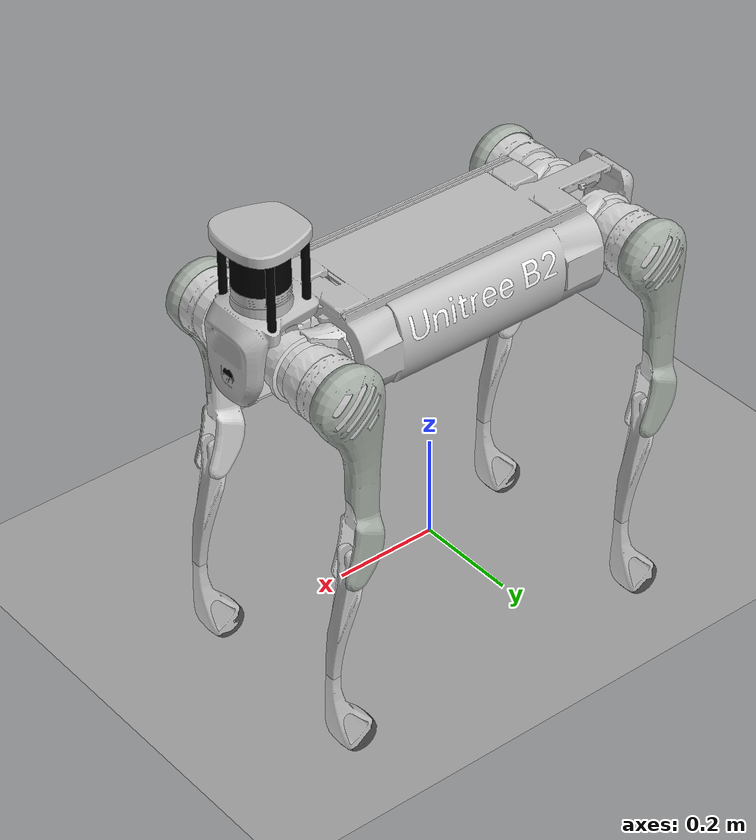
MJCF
<mujoco model="b2_description">
  <compiler angle="radian" autolimits="true" inertiafromgeom="false" meshdir="assets/b2"/>
  <option timestep="0.001" gravity="0 0 -9.81" integrator="implicitfast"/>

  <default>
    <joint damping="0.5" armature="0.01" frictionloss="0.05"/>
    <geom friction="1.2 0.005 0.0001" condim="3" contype="1" conaffinity="0"/>
    <position ctrllimited="true" forcelimited="true"/>
    <default class="collision">
      <geom group="3"/>
    </default>
    <default class="visual">
      <geom type="mesh" group="1" contype="0" conaffinity="0" mass="0"/>
    </default>
  </default>

  <asset>
    <mesh name="B2_base_link_0" file="B2_base_link_0.obj"/>
    <mesh name="B2_base_link_1" file="B2_base_link_1.obj"/>
    <mesh name="B2_base_link_2" file="B2_base_link_2.obj"/>
    <mesh name="B2_base_link_3" file="B2_base_link_3.obj"/>
    <mesh name="B2_FL_hip_0" file="B2_FL_hip_0.obj"/>
    <mesh name="B2_FL_thigh_0" file="B2_FL_thigh_0.obj"/>
    <mesh name="B2_FL_thigh_1" file="B2_FL_thigh_1.obj"/>
    <mesh name="B2_calf_0" file="B2_calf_0.obj"/>
    <mesh name="B2_calf_1" file="B2_calf_1.obj"/>
    <mesh name="B2_FR_hip_0" file="B2_FR_hip_0.obj"/>
    <mesh name="B2_FR_thigh_0" file="B2_FR_thigh_0.obj"/>
    <mesh name="B2_FR_thigh_1" file="B2_FR_thigh_1.obj"/>
    <mesh name="B2_RL_hip_0" file="B2_RL_hip_0.obj"/>
    <mesh name="B2_RL_thigh_0" file="B2_RL_thigh_0.obj"/>
    <mesh name="B2_RL_thigh_1" file="B2_RL_thigh_1.obj"/>
    <mesh name="B2_RR_hip_0" file="B2_RR_hip_0.obj"/>
    <mesh name="B2_RR_thigh_0" file="B2_RR_thigh_0.obj"/>
    <mesh name="B2_RR_thigh_1" file="B2_RR_thigh_1.obj"/>
  </asset>

  <worldbody>
    <geom name="floor" type="plane" size="10 10 0.1" contype="1" conaffinity="1" rgba="0.8 0.8 0.8 1"/>
    <light pos="0 0 2" dir="0 0 -1"/>

    <!-- Spawn above standing contact: nominal 0.5 + foot bottom 0.032 + clearance 0.02. -->
    <body name="base_link" pos="0 0 0.552">
      <freejoint name="root"/>
      <inertial pos="0.000458 0.005261 0.000665" mass="35.86" fullinertia="0.27466 1.0618 1.1825 -0.000622 0.00315 -0.00139"/>
      <geom name="base_link_collision" class="collision" type="box" size="0.25 0.14 0.075" rgba="0.2 0.3 0.6 1"/>
      <geom name="base_link_visual_0" class="visual" mesh="B2_base_link_0" rgba="0.74876 0.74876 0.74876 1"/>
      <geom name="base_link_visual_1" class="visual" mesh="B2_base_link_1" rgba="1 1 1 1"/>
      <geom name="base_link_visual_2" class="visual" mesh="B2_base_link_2" rgba="0 0 0 1"/>
      <geom name="base_link_visual_3" class="visual" mesh="B2_base_link_3" rgba="0.002853 0.002853 0.002853 1"/>
      <body name="lidar_link" pos="0.34218 0 0.17851">
        <!-- lidar_link: massless in URDF -->
        <geom name="lidar_link_collision" class="collision" type="cylinder" size="0.076 0.08" pos="0 0 -0.02" rgba="0.5 0.5 0.5 1"/>
      </body>
      <body name="f_dc_link" pos="0.41251 0.024997 0.04765" quat="0.270595753366195 -0.6532810280864045 0.653283427726018 -0.27059674732172273">
        <!-- f_dc_link: massless in URDF -->
      </body>
      <body name="r_dc_link" pos="-0.4081 -0.025 0.024861" quat="0.27075906516539805 -0.6532133587337356 -0.6532157581247853 0.2707600597208046">
        <!-- r_dc_link: massless in URDF -->
      </body>
      <body name="imu_link" pos="0 -0.02341 0.04927">
        <!-- imu_link: massless in URDF -->
      </body>
      <body name="head_Link">
        <inertial pos="0.33989 -0.000168 0.12029" mass="3.6885" fullinertia="0.026455 0.029221 0.010918 3.15E-05 0.00166 -3.27E-05"/>
        <geom name="head_Link_collision" class="collision" type="box" size="0.02 0.06 0.07" pos="0.41 0 0.005" rgba="0.5 0.5 0.5 1"/>
      </body>
      <body name="tail_link">
        <inertial pos="-0.37448 0.000488 0.006495" mass="0.795" fullinertia="0.0028118 0.0047506 0.0029154 1.95E-05 -7.87E-06 -1.57E-05"/>
        <geom name="tail_link_collision" class="collision" type="box" size="0.0125 0.06 0.07" pos="-0.405 0 0.005" rgba="0.5 0.5 0.5 1"/>
      </body>
      <body name="FL_hip" pos="0.3285 0.072 0">
        <joint name="FL_hip_joint" type="hinge" axis="1 0 0" range="-0.87 0.87"/>
        <inertial pos="-0.003841 -0.009068 0" mass="2.673" fullinertia="0.0033188 0.0048743 0.0037087 7.16E-05 -3.77E-07 4E-09"/>
        <geom name="FL_hip_collision" class="collision" type="cylinder" size="0.07 0.025" pos="0 0.12 0" quat="0.7071067811865476 0.7071067811865475 0.0 0.0" rgba="0.35 0.35 0.35 1"/>
        <geom name="FL_hip_visual" class="visual" mesh="B2_FL_hip_0" rgba="0.85 0.85 0.85 1"/>
        <body name="FL_thigh" pos="0 0.11973 0">
          <joint name="FL_thigh_joint" type="hinge" axis="0 1 0" range="-0.94 4.69"/>
          <inertial pos="-0.006279 -0.032049 -0.057835" mass="4.536" fullinertia="0.062299 0.061399 0.0081997 0.00087781 -0.0036475 0.0083537"/>
          <geom name="FL_thigh_collision" class="collision" type="box" size="0.125 0.014 0.02" pos="-0.03 0 -0.2" quat="0.7073882691671998 0.0 0.706825181105366 0.0" rgba="0.35 0.35 0.35 1"/>
          <geom name="FL_thigh_visual_0" class="visual" mesh="B2_FL_thigh_0" rgba="0.85 0.85 0.85 1"/>
          <geom name="FL_thigh_visual_1" class="visual" mesh="B2_FL_thigh_1" rgba="0.6500053 0.68 0.6500053 1"/>
          <body name="FL_calf" pos="0 -8.6984E-05 -0.35">
            <joint name="FL_calf_joint" type="hinge" axis="0 1 0" range="-2.82 -0.43"/>
            <inertial pos="0.012422 0 -0.12499" mass="0.404" fullinertia="0.01143 0.011534 0.000331 0 0.000643 0"/>
            <geom name="FL_calf_collision" class="collision" type="box" size="0.05 0.01225 0.009" pos="-0.002 0 -0.03" quat="0.8253356149096783 0.0 0.5646424733950354 0.0" rgba="0.35 0.35 0.35 1"/>
            <geom name="FL_calf_collision_1" class="collision" type="box" size="0.05 0.01225 0.009" pos="0.022 0 -0.1" quat="0.7807069511324468 0.0 0.6248973167276999 0.0" rgba="0.35 0.35 0.35 1"/>
            <geom name="FL_calf_collision_2" class="collision" type="box" size="0.075 0.01225 0.0075" pos="0.036 0 -0.225" quat="0.7213823574366063 0.0 0.6925369985634013 0.0" rgba="0.35 0.35 0.35 1"/>
            <geom name="FL_calf_collision_3" class="collision" type="box" size="0.025 0.014 0.0175" pos="0.023 0 -0.31" quat="0.5403023058681398 0.0 0.8414709848078965 0.0" rgba="0.35 0.35 0.35 1"/>
            <geom name="FL_calf_visual_0" class="visual" mesh="B2_calf_0" rgba="0.74876 0.74876 0.74876 1"/>
            <geom name="FL_calf_visual_1" class="visual" mesh="B2_calf_1" rgba="0.07323546 0.07323546 0.07323546 1"/>
            <body name="FL_foot" pos="0 0 -0.35">
              <inertial pos="-0.006511 0 -0.010144" mass="0.126" fullinertia="3.8E-05 4.1E-05 4.2E-05 0 1.1E-05 0"/>
              <geom name="FL_foot_collision" class="collision" type="sphere" size="0.032" quat="0.7073882691671998 0.706825181105366 0.0 0.0" rgba="0.9 0.4 0.2 1"/>
              <site name="FL_foot_site" pos="0 0 0" size="0.006"/>
            </body>
          </body>
          <body name="FL_calf_rotor" pos="0 -0.05788 0">
            <inertial pos="0.0 0.0 0.0" mass="0.2734" fullinertia="0.000144463 0.000144463 0.000263053 0.0 0.0 0.0"/>
            <geom name="FL_calf_rotor_collision" class="collision" type="cylinder" size="0.05 0.01" quat="0.7071067811865476 0.7071067811865475 0.0 0.0" rgba="0.5 0.5 0.5 1"/>
          </body>
        </body>
        <body name="FL_thigh_rotor" pos="0 -0.00798 0">
          <inertial pos="0.0 0.0 0.0" mass="0.2734" fullinertia="0.000144463 0.000144463 0.000263053 0.0 0.0 0.0"/>
          <geom name="FL_thigh_rotor_collision" class="collision" type="cylinder" size="0.05 0.01" quat="0.7071067811865476 0.7071067811865475 0.0 0.0" rgba="0.5 0.5 0.5 1"/>
        </body>
      </body>
      <body name="FL_hip_rotor" pos="0.20205 0.072 0">
        <inertial pos="0.0 0.0 0.0" mass="0.2734" fullinertia="0.000144463 0.000144463 0.000263053 0.0 0.0 0.0"/>
        <geom name="FL_hip_rotor_collision" class="collision" type="cylinder" size="0.05 0.01" quat="0.7071067811865476 0.0 0.7071067811865475 0.0" rgba="0.5 0.5 0.5 1"/>
      </body>
      <body name="FR_hip" pos="0.3285 -0.072 0">
        <joint name="FR_hip_joint" type="hinge" axis="1 0 0" range="-0.87 0.87"/>
        <inertial pos="-0.009305 0.010228 0.000264" mass="2.673" fullinertia="0.0026431 0.0046728 0.0034208 -0.00019234 -6.76E-06 7.16E-06"/>
        <geom name="FR_hip_collision" class="collision" type="cylinder" size="0.07 0.025" pos="0 -0.12 0" quat="0.7071067811865476 0.7071067811865475 0.0 0.0" rgba="0.35 0.35 0.35 1"/>
        <geom name="FR_hip_visual" class="visual" mesh="B2_FR_hip_0" rgba="0.85 0.85 0.85 1"/>
        <body name="FR_thigh" pos="0 -0.11973 0">
          <joint name="FR_thigh_joint" type="hinge" axis="0 1 0" range="-0.94 4.69"/>
          <inertial pos="-0.006279 0.032049 -0.057835" mass="4.536" fullinertia="0.06229908 0.06139927 0.008199745 -0.000877808 -0.003647464 -0.008353671"/>
          <geom name="FR_thigh_collision" class="collision" type="box" size="0.125 0.014 0.02" pos="-0.03 0 -0.2" quat="0.7073882691671998 0.0 0.706825181105366 0.0" rgba="0.35 0.35 0.35 1"/>
          <geom name="FR_thigh_visual_0" class="visual" mesh="B2_FR_thigh_0" rgba="0.85 0.85 0.85 1"/>
          <geom name="FR_thigh_visual_1" class="visual" mesh="B2_FR_thigh_1" rgba="0.6500053 0.68 0.6500053 1"/>
          <body name="FR_calf" pos="0 8.6986E-05 -0.35">
            <joint name="FR_calf_joint" type="hinge" axis="0 1 0" range="-2.82 -0.43"/>
            <inertial pos="0.012422 0 -0.12499" mass="0.404" fullinertia="0.01143 0.011534 0.000331 0 0.000643 0"/>
            <geom name="FR_calf_collision" class="collision" type="box" size="0.05 0.01225 0.009" pos="-0.002 0 -0.03" quat="0.8253356149096783 0.0 0.5646424733950354 0.0" rgba="0.35 0.35 0.35 1"/>
            <geom name="FR_calf_collision_1" class="collision" type="box" size="0.05 0.01225 0.009" pos="0.022 0 -0.1" quat="0.7807069511324468 0.0 0.6248973167276999 0.0" rgba="0.35 0.35 0.35 1"/>
            <geom name="FR_calf_collision_2" class="collision" type="box" size="0.075 0.01225 0.0075" pos="0.036 0 -0.225" quat="0.7213823574366063 0.0 0.6925369985634013 0.0" rgba="0.35 0.35 0.35 1"/>
            <geom name="FR_calf_collision_3" class="collision" type="box" size="0.025 0.014 0.0175" pos="0.023 0 -0.31" quat="0.5403023058681398 0.0 0.8414709848078965 0.0" rgba="0.35 0.35 0.35 1"/>
            <geom name="FR_calf_visual_0" class="visual" mesh="B2_calf_0" rgba="0.74876 0.74876 0.74876 1"/>
            <geom name="FR_calf_visual_1" class="visual" mesh="B2_calf_1" rgba="0.07323546 0.07323546 0.07323546 1"/>
            <body name="FR_foot" pos="0 0 -0.35">
              <inertial pos="-0.006511 0 -0.010144" mass="0.126" fullinertia="3.8E-05 4.1E-05 4.2E-05 0 1.1E-05 0"/>
              <geom name="FR_foot_collision" class="collision" type="sphere" size="0.032" quat="0.7073882691671998 0.706825181105366 0.0 0.0" rgba="0.9 0.4 0.2 1"/>
              <site name="FR_foot_site" pos="0 0 0" size="0.006"/>
            </body>
          </body>
          <body name="FR_calf_rotor" pos="0 0.05788 0">
            <inertial pos="0.0 0.0 0.0" mass="0.2734" fullinertia="0.000144463 0.000144463 0.000263053 0.0 0.0 0.0"/>
            <geom name="FR_calf_rotor_collision" class="collision" type="cylinder" size="0.05 0.01" quat="0.7071067811865476 0.7071067811865475 0.0 0.0" rgba="0.5 0.5 0.5 1"/>
          </body>
        </body>
        <body name="FR_thigh_rotor" pos="0 0.00798 0">
          <inertial pos="0.0 0.0 0.0" mass="0.2734" fullinertia="0.000144463 0.000144463 0.000263053 0.0 0.0 0.0"/>
          <geom name="FR_thigh_rotor_collision" class="collision" type="cylinder" size="0.05 0.01" quat="0.7071067811865476 0.7071067811865475 0.0 0.0" rgba="0.5 0.5 0.5 1"/>
        </body>
      </body>
      <body name="FR_hip_rotor" pos="0.20205 -0.072 0">
        <inertial pos="0.0 0.0 0.0" mass="0.2734" fullinertia="0.000144463 0.000144463 0.000263053 0.0 0.0 0.0"/>
        <geom name="FR_hip_rotor_collision" class="collision" type="cylinder" size="0.05 0.01" quat="0.7071067811865476 0.0 0.7071067811865475 0.0" rgba="0.5 0.5 0.5 1"/>
      </body>
      <body name="RL_hip" pos="-0.3285 0.072 0">
        <joint name="RL_hip_joint" type="hinge" axis="1 0 0" range="-0.87 0.87"/>
        <inertial pos="0.009305 -0.010228 0.000264" mass="2.673" fullinertia="0.0026431 0.0046728 0.0034208 -0.00019234 6.76E-06 -7.16E-06"/>
        <geom name="RL_hip_collision" class="collision" type="cylinder" size="0.07 0.025" pos="0 0.12 0" quat="0.7071067811865476 0.7071067811865475 0.0 0.0" rgba="0.35 0.35 0.35 1"/>
        <geom name="RL_hip_visual" class="visual" mesh="B2_RL_hip_0" rgba="0.85 0.85 0.85 1"/>
        <body name="RL_thigh" pos="0 0.11973 0">
          <joint name="RL_thigh_joint" type="hinge" axis="0 1 0" range="-0.94 4.69"/>
          <inertial pos="-0.006279 -0.032049 -0.057835" mass="4.536" fullinertia="0.06229908 0.06139927 0.008199745 0.000877808 -0.003647464 0.008353671"/>
          <geom name="RL_thigh_collision" class="collision" type="box" size="0.125 0.014 0.02" pos="-0.03 0 -0.2" quat="0.7073882691671998 0.0 0.706825181105366 0.0" rgba="0.35 0.35 0.35 1"/>
          <geom name="RL_thigh_visual_0" class="visual" mesh="B2_RL_thigh_0" rgba="0.85 0.85 0.85 1"/>
          <geom name="RL_thigh_visual_1" class="visual" mesh="B2_RL_thigh_1" rgba="0.6500053 0.68 0.6500053 1"/>
          <body name="RL_calf" pos="0 -8.6984E-05 -0.35">
            <joint name="RL_calf_joint" type="hinge" axis="0 1 0" range="-2.82 -0.43"/>
            <inertial pos="0.012422 0 -0.12499" mass="0.404" fullinertia="0.01143 0.011534 0.000331 0 0.000643 0"/>
            <geom name="RL_calf_collision" class="collision" type="box" size="0.05 0.01225 0.009" pos="-0.002 0 -0.03" quat="0.8253356149096783 0.0 0.5646424733950354 0.0" rgba="0.35 0.35 0.35 1"/>
            <geom name="RL_calf_collision_1" class="collision" type="box" size="0.05 0.01225 0.009" pos="0.022 0 -0.1" quat="0.7807069511324468 0.0 0.6248973167276999 0.0" rgba="0.35 0.35 0.35 1"/>
            <geom name="RL_calf_collision_2" class="collision" type="box" size="0.075 0.01225 0.0075" pos="0.036 0 -0.225" quat="0.7213823574366063 0.0 0.6925369985634013 0.0" rgba="0.35 0.35 0.35 1"/>
            <geom name="RL_calf_collision_3" class="collision" type="box" size="0.025 0.014 0.0175" pos="0.023 0 -0.31" quat="0.5403023058681398 0.0 0.8414709848078965 0.0" rgba="0.35 0.35 0.35 1"/>
            <geom name="RL_calf_visual_0" class="visual" mesh="B2_calf_0" rgba="0.74876 0.74876 0.74876 1"/>
            <geom name="RL_calf_visual_1" class="visual" mesh="B2_calf_1" rgba="0.07323546 0.07323546 0.07323546 1"/>
            <body name="RL_foot" pos="0 0 -0.35">
              <inertial pos="-0.006511 0 -0.010144" mass="0.126" fullinertia="3.8E-05 4.1E-05 4.2E-05 0 1.1E-05 0"/>
              <geom name="RL_foot_collision" class="collision" type="sphere" size="0.032" quat="0.7073882691671998 0.706825181105366 0.0 0.0" rgba="0.9 0.4 0.2 1"/>
              <site name="RL_foot_site" pos="0 0 0" size="0.006"/>
            </body>
          </body>
          <body name="RL_calf_rotor" pos="0 -0.05788 0">
            <inertial pos="0.0 0.0 0.0" mass="0.2734" fullinertia="0.000144463 0.000144463 0.000263053 0.0 0.0 0.0"/>
            <geom name="RL_calf_rotor_collision" class="collision" type="cylinder" size="0.05 0.01" quat="0.7071067811865476 0.7071067811865475 0.0 0.0" rgba="0.5 0.5 0.5 1"/>
          </body>
        </body>
        <body name="RL_thigh_rotor" pos="0 -0.00798 0">
          <inertial pos="0.0 0.0 0.0" mass="0.2734" fullinertia="0.000144463 0.000144463 0.000263053 0.0 0.0 0.0"/>
          <geom name="RL_thigh_rotor_collision" class="collision" type="cylinder" size="0.05 0.01" quat="0.7071067811865476 0.7071067811865475 0.0 0.0" rgba="0.5 0.5 0.5 1"/>
        </body>
      </body>
      <body name="RL_hip_rotor" pos="-0.20205 0.072 0">
        <inertial pos="0.0 0.0 0.0" mass="0.2734" fullinertia="0.000144463 0.000144463 0.000263053 0.0 0.0 0.0"/>
        <geom name="RL_hip_rotor_collision" class="collision" type="cylinder" size="0.05 0.01" quat="0.7071067811865476 0.0 0.7071067811865475 0.0" rgba="0.5 0.5 0.5 1"/>
      </body>
      <body name="RR_hip" pos="-0.3285 -0.072 0">
        <joint name="RR_hip_joint" type="hinge" axis="1 0 0" range="-0.87 0.87"/>
        <inertial pos="0.003841 0.009068 0" mass="2.673" fullinertia="0.0033188 0.0048743 0.0037087 7.16E-05 3.77E-07 -4E-09"/>
        <geom name="RR_hip_collision" class="collision" type="cylinder" size="0.07 0.025" pos="0 -0.12 0" quat="0.7071067811865476 0.7071067811865475 0.0 0.0" rgba="0.35 0.35 0.35 1"/>
        <geom name="RR_hip_visual" class="visual" mesh="B2_RR_hip_0" rgba="0.85 0.85 0.85 1"/>
        <body name="RR_thigh" pos="0 -0.11973 0">
          <joint name="RR_thigh_joint" type="hinge" axis="0 1 0" range="-0.94 4.69"/>
          <inertial pos="-0.006279 0.032049 -0.057835" mass="4.536" fullinertia="0.062299 0.061399 0.0081997 -0.00087781 -0.0036475 -0.0083537"/>
          <geom name="RR_thigh_collision" class="collision" type="box" size="0.125 0.014 0.02" pos="-0.03 0 -0.2" quat="0.7073882691671998 0.0 0.706825181105366 0.0" rgba="0.35 0.35 0.35 1"/>
          <geom name="RR_thigh_visual_0" class="visual" mesh="B2_RR_thigh_0" rgba="0.85 0.85 0.85 1"/>
          <geom name="RR_thigh_visual_1" class="visual" mesh="B2_RR_thigh_1" rgba="0.6500053 0.68 0.6500053 1"/>
          <body name="RR_calf" pos="0 8.6986E-05 -0.35">
            <joint name="RR_calf_joint" type="hinge" axis="0 1 0" range="-2.82 -0.43"/>
            <inertial pos="0.012422 0 -0.12499" mass="0.404" fullinertia="0.01143 0.011534 0.000331 0 0.000643 0"/>
            <geom name="RR_calf_collision" class="collision" type="box" size="0.05 0.01225 0.009" pos="-0.002 0 -0.03" quat="0.8253356149096783 0.0 0.5646424733950354 0.0" rgba="0.35 0.35 0.35 1"/>
            <geom name="RR_calf_collision_1" class="collision" type="box" size="0.05 0.01225 0.009" pos="0.022 0 -0.1" quat="0.7807069511324468 0.0 0.6248973167276999 0.0" rgba="0.35 0.35 0.35 1"/>
            <geom name="RR_calf_collision_2" class="collision" type="box" size="0.075 0.01225 0.0075" pos="0.036 0 -0.225" quat="0.7213823574366063 0.0 0.6925369985634013 0.0" rgba="0.35 0.35 0.35 1"/>
            <geom name="RR_calf_collision_3" class="collision" type="box" size="0.025 0.014 0.0175" pos="0.023 0 -0.31" quat="0.5403023058681398 0.0 0.8414709848078965 0.0" rgba="0.35 0.35 0.35 1"/>
            <geom name="RR_calf_visual_0" class="visual" mesh="B2_calf_0" rgba="0.74876 0.74876 0.74876 1"/>
            <geom name="RR_calf_visual_1" class="visual" mesh="B2_calf_1" rgba="0.07323546 0.07323546 0.07323546 1"/>
            <body name="RR_foot" pos="0 -8.6984E-05 -0.35">
              <inertial pos="-0.006511 0 -0.010144" mass="0.126" fullinertia="3.8E-05 4.1E-05 4.2E-05 0 1.1E-05 0"/>
              <geom name="RR_foot_collision" class="collision" type="sphere" size="0.032" quat="0.7073882691671998 0.706825181105366 0.0 0.0" rgba="0.9 0.4 0.2 1"/>
              <site name="RR_foot_site" pos="0 0 0" size="0.006"/>
            </body>
          </body>
          <body name="RR_calf_rotor" pos="0 0.05788 0">
            <inertial pos="0.0 0.0 0.0" mass="0.2734" fullinertia="0.000144463 0.000144463 0.000263053 0.0 0.0 0.0"/>
            <geom name="RR_calf_rotor_collision" class="collision" type="cylinder" size="0.05 0.01" quat="0.7071067811865476 0.7071067811865475 0.0 0.0" rgba="0.5 0.5 0.5 1"/>
          </body>
        </body>
        <body name="RR_thigh_rotor" pos="0 0.00798 0">
          <inertial pos="0.0 0.0 0.0" mass="0.2734" fullinertia="0.000144463 0.000144463 0.000263053 0.0 0.0 0.0"/>
          <geom name="RR_thigh_rotor_collision" class="collision" type="cylinder" size="0.05 0.01" quat="0.7071067811865476 0.7071067811865475 0.0 0.0" rgba="0.5 0.5 0.5 1"/>
        </body>
      </body>
      <body name="RR_hip_rotor" pos="-0.20205 -0.072 0">
        <inertial pos="0.0 0.0 0.0" mass="0.2734" fullinertia="0.000144463 0.000144463 0.000263053 0.0 0.0 0.0"/>
        <geom name="RR_hip_rotor_collision" class="collision" type="cylinder" size="0.05 0.01" quat="0.7071067811865476 0.0 0.7071067811865475 0.0" rgba="0.5 0.5 0.5 1"/>
      </body>
      <body name="f_oc_link" pos="0.39079 0 -0.013433" quat="0.4999981633974483 -0.49999999999662686 0.5000018366025516 -0.49999999999662686">
        <!-- f_oc_link: massless in URDF -->
      </body>
      <body name="r_oc_link" pos="-0.38451 0 -0.023249" quat="0.4999981633974483 -0.49999999999662686 -0.5000018366025516 0.49999999999662686">
        <!-- r_oc_link: massless in URDF -->
      </body>
    </body>
  </worldbody>

  <actuator>
    <position name="FL_hip_joint" joint="FL_hip_joint" kp="500.0" kv="20.0" ctrlrange="-0.87 0.87" forcerange="-200 200"/>
    <position name="FL_thigh_joint" joint="FL_thigh_joint" kp="1000.0" kv="20.0" ctrlrange="-0.94 4.69" forcerange="-200 200"/>
    <position name="FL_calf_joint" joint="FL_calf_joint" kp="1000.0" kv="20.0" ctrlrange="-2.82 -0.43" forcerange="-320 320"/>
    <position name="FR_hip_joint" joint="FR_hip_joint" kp="500.0" kv="20.0" ctrlrange="-0.87 0.87" forcerange="-200 200"/>
    <position name="FR_thigh_joint" joint="FR_thigh_joint" kp="1000.0" kv="20.0" ctrlrange="-0.94 4.69" forcerange="-200 200"/>
    <position name="FR_calf_joint" joint="FR_calf_joint" kp="1000.0" kv="20.0" ctrlrange="-2.82 -0.43" forcerange="-320 320"/>
    <position name="RL_hip_joint" joint="RL_hip_joint" kp="500.0" kv="20.0" ctrlrange="-0.87 0.87" forcerange="-200 200"/>
    <position name="RL_thigh_joint" joint="RL_thigh_joint" kp="1000.0" kv="20.0" ctrlrange="-0.94 4.69" forcerange="-200 200"/>
    <position name="RL_calf_joint" joint="RL_calf_joint" kp="1000.0" kv="20.0" ctrlrange="-2.82 -0.43" forcerange="-320 320"/>
    <position name="RR_hip_joint" joint="RR_hip_joint" kp="500.0" kv="20.0" ctrlrange="-0.87 0.87" forcerange="-200 200"/>
    <position name="RR_thigh_joint" joint="RR_thigh_joint" kp="1000.0" kv="20.0" ctrlrange="-0.94 4.69" forcerange="-200 200"/>
    <position name="RR_calf_joint" joint="RR_calf_joint" kp="1000.0" kv="20.0" ctrlrange="-2.82 -0.43" forcerange="-320 320"/>
  </actuator>
</mujoco>
